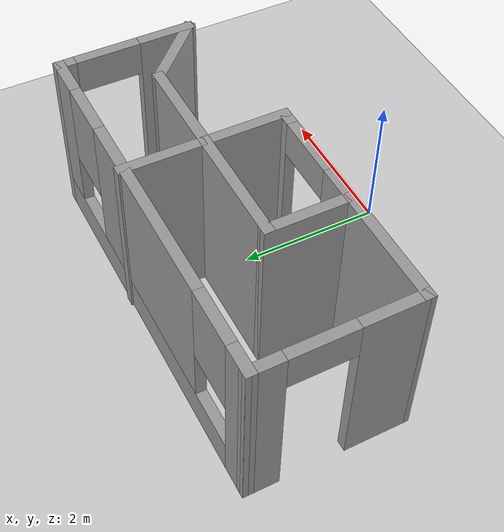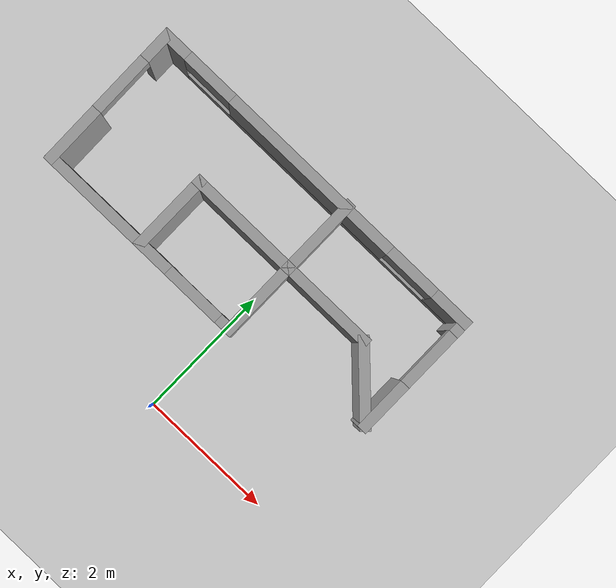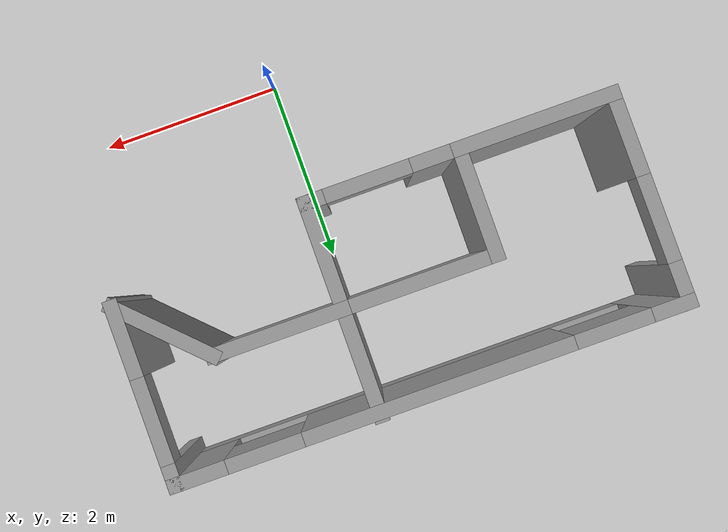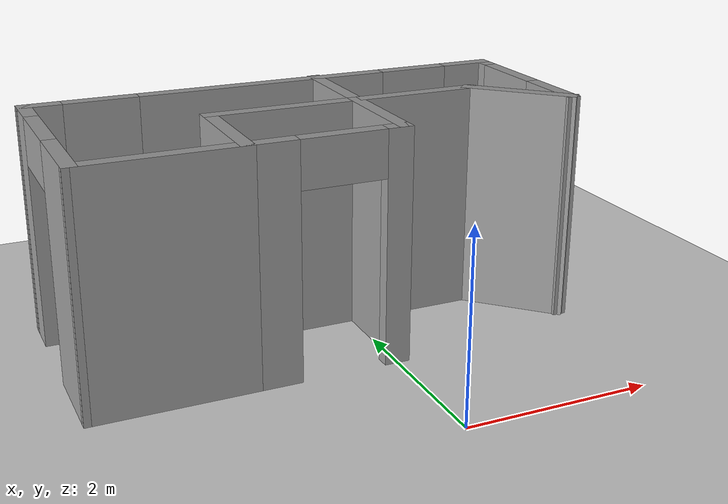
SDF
<sdf version="1.6">
 <world name="default">
  <model name="ground_plane">
   <static>1</static>
   <link name="link">
    <collision name="collision">
     <geometry><plane><normal>0 0 1</normal><size>100 100</size></plane></geometry>
     <surface><friction><ode><mu>100</mu><mu2>50</mu2></ode></friction></surface>
    </collision>
    <visual name="visual">
     <cast_shadows>0</cast_shadows>
     <geometry><plane><normal>0 0 1</normal><size>100 100</size></plane></geometry>
     <material>
      <script><uri>file://media/materials/scripts/gazebo.material</uri><name>Gazebo/Grey</name></script>
     </material>
    </visual>
   </link>
  </model>
  <light name="sun" type="directional">
   <pose>0 0 10 0 -0 0</pose>
   <diffuse>0.8 0.8 0.8 1</diffuse>
   <specular>0.1 0.1 0.1 1</specular>
   <attenuation>
    <range>1000</range>
    <constant>0.9</constant>
    <linear>0.01</linear>
    <quadratic>0.001</quadratic>
   </attenuation>
   <direction>-0.5 0.5 -1</direction>
  </light>
  <gravity>0 0 -9.8</gravity>
  <magnetic_field>6e-06 2.3e-05 -4.2e-05</magnetic_field>
  <atmosphere type="adiabatic"/>
  <physics name="default_physics" default="0" type="ode">
   <max_step_size>0.001</max_step_size>
   <real_time_factor>1</real_time_factor>
   <real_time_update_rate>1000</real_time_update_rate>
  </physics>
  <scene><ambient>0.4 0.4 0.4 1</ambient><background>0.7 0.7 0.7 1</background><shadows>1</shadows></scene>
  <spherical_coordinates>
   <surface_model>EARTH_WGS84</surface_model>
   <latitude_deg>0</latitude_deg>
   <longitude_deg>0</longitude_deg>
   <elevation>0</elevation>
   <heading_deg>0</heading_deg>
  </spherical_coordinates>
  <model name="test_room">
   <pose>-0.472272 2.58647 0 0 -0 0</pose>
   <link name="Wall_0">
    <pose>-0.015152 1.07256 0 0 -0 0</pose>
    <visual name="Wall_0_Visual_0">
     <pose>-2.5225 0 1.25 0 -0 0</pose>
     <geometry><box><size>0.455 0.15 2.5</size></box></geometry>
     <material>
      <script><uri>file://media/materials/scripts/gazebo.material</uri><name>Gazebo/Grey</name></script>
      <ambient>1 1 1 1</ambient>
     </material>
    </visual>
    <collision name="Wall_0_Collision_0">
     <geometry><box><size>0.455 0.15 2.5</size></box></geometry>
     <pose>-2.5225 0 1.25 0 -0 0</pose>
    </collision>
    <visual name="Wall_0_Visual_1">
     <pose>0.2275 0 0.25 0 -0 0</pose>
     <geometry><box><size>5.045 0.15 0.5</size></box></geometry>
     <material>
      <script><uri>file://media/materials/scripts/gazebo.material</uri><name>Gazebo/Grey</name></script>
      <ambient>1 1 1 1</ambient>
     </material>
    </visual>
    <collision name="Wall_0_Collision_1">
     <geometry><box><size>5.045 0.15 0.5</size></box></geometry>
     <pose>0.2275 0 0.25 0 -0 0</pose>
    </collision>
    <visual name="Wall_0_Visual_2">
     <pose>-0.078 0 1.5 0 -0 0</pose>
     <geometry><box><size>2.834 0.15 2</size></box></geometry>
     <material>
      <script><uri>file://media/materials/scripts/gazebo.material</uri><name>Gazebo/Grey</name></script>
      <ambient>1 1 1 1</ambient>
     </material>
    </visual>
    <collision name="Wall_0_Collision_2">
     <geometry><box><size>2.834 0.15 2</size></box></geometry>
     <pose>-0.078 0 1.5 0 -0 0</pose>
    </collision>
    <visual name="Wall_0_Visual_3">
     <pose>2.4445 0 1.5 0 -0 0</pose>
     <geometry><box><size>0.611 0.15 2</size></box></geometry>
     <material>
      <script><uri>file://media/materials/scripts/gazebo.material</uri><name>Gazebo/Grey</name></script>
      <ambient>1 1 1 1</ambient>
     </material>
    </visual>
    <collision name="Wall_0_Collision_3">
     <geometry><box><size>0.611 0.15 2</size></box></geometry>
     <pose>2.4445 0 1.5 0 -0 0</pose>
    </collision>
    <visual name="Wall_0_Visual_4">
     <pose>-1.895 0 1.9 0 -0 0</pose>
     <geometry><box><size>0.8 0.15 1.2</size></box></geometry>
     <material>
      <script><uri>file://media/materials/scripts/gazebo.material</uri><name>Gazebo/Grey</name></script>
      <ambient>1 1 1 1</ambient>
     </material>
    </visual>
    <collision name="Wall_0_Collision_4">
     <geometry><box><size>0.8 0.15 1.2</size></box></geometry>
     <pose>-1.895 0 1.9 0 -0 0</pose>
    </collision>
    <visual name="Wall_0_Visual_5">
     <pose>1.739 0 1.9 0 -0 0</pose>
     <geometry><box><size>0.8 0.15 1.2</size></box></geometry>
     <material>
      <script><uri>file://media/materials/scripts/gazebo.material</uri><name>Gazebo/Grey</name></script>
      <ambient>1 1 1 1</ambient>
     </material>
    </visual>
    <collision name="Wall_0_Collision_5">
     <geometry><box><size>0.8 0.15 1.2</size></box></geometry>
     <pose>1.739 0 1.9 0 -0 0</pose>
    </collision>
   </link>
   <link name="Wall_1">
    <pose>2.65985 0.147564 0 0 0 -1.5708</pose>
    <visual name="Wall_1_Visual_0">
     <pose>-0.857 0 1.25 0 -0 0</pose>
     <geometry><box><size>0.286 0.15 2.5</size></box></geometry>
     <material>
      <script><uri>file://media/materials/scripts/gazebo.material</uri><name>Gazebo/Grey</name></script>
      <ambient>1 1 1 1</ambient>
     </material>
    </visual>
    <collision name="Wall_1_Collision_0">
     <geometry><box><size>0.286 0.15 2.5</size></box></geometry>
     <pose>-0.857 0 1.25 0 -0 0</pose>
    </collision>
    <visual name="Wall_1_Visual_1">
     <pose>0.593 0 1.25 0 -0 0</pose>
     <geometry><box><size>0.814 0.15 2.5</size></box></geometry>
     <material>
      <script><uri>file://media/materials/scripts/gazebo.material</uri><name>Gazebo/Grey</name></script>
      <ambient>1 1 1 1</ambient>
     </material>
    </visual>
    <collision name="Wall_1_Collision_1">
     <geometry><box><size>0.814 0.15 2.5</size></box></geometry>
     <pose>0.593 0 1.25 0 -0 0</pose>
    </collision>
    <visual name="Wall_1_Visual_2">
     <pose>-0.264 0 2.25 0 -0 0</pose>
     <geometry><box><size>0.9 0.15 0.5</size></box></geometry>
     <material>
      <script><uri>file://media/materials/scripts/gazebo.material</uri><name>Gazebo/Grey</name></script>
      <ambient>1 1 1 1</ambient>
     </material>
    </visual>
    <collision name="Wall_1_Collision_2">
     <geometry><box><size>0.9 0.15 0.5</size></box></geometry>
     <pose>-0.264 0 2.25 0 -0 0</pose>
    </collision>
   </link>
   <link name="Wall_10">
    <collision name="Wall_10_Collision">
     <geometry><box><size>1.75 0.15 2.5</size></box></geometry>
     <pose>0 0 1.25 0 -0 0</pose>
    </collision>
    <visual name="Wall_10_Visual">
     <pose>0 0 1.25 0 -0 0</pose>
     <geometry><box><size>1.75 0.15 2.5</size></box></geometry>
     <material>
      <script><uri>file://media/materials/scripts/gazebo.material</uri><name>Gazebo/Grey</name></script>
      <ambient>1 1 1 1</ambient>
     </material>
    </visual>
    <pose>-1.86797 -1.09962 0 0 -0 3.14159</pose>
   </link>
   <link name="Wall_11">
    <pose>-2.67906 -0.013528 0 0 -0 1.58101</pose>
    <visual name="Wall_11_Visual_0">
     <pose>-0.696819 0 1.25 0 -0 0</pose>
     <geometry><box><size>0.928657 0.15 2.5</size></box></geometry>
     <material>
      <script><uri>file://media/materials/scripts/gazebo.material</uri><name>Gazebo/Grey</name></script>
      <ambient>1 1 1 1</ambient>
     </material>
    </visual>
    <collision name="Wall_11_Collision_0">
     <geometry><box><size>0.928657 0.15 2.5</size></box></geometry>
     <pose>-0.696819 0 1.25 0 -0 0</pose>
    </collision>
    <visual name="Wall_11_Visual_1">
     <pose>0.914329 0 1.25 0 -0 0</pose>
     <geometry><box><size>0.493639 0.15 2.5</size></box></geometry>
     <material>
      <script><uri>file://media/materials/scripts/gazebo.material</uri><name>Gazebo/Grey</name></script>
      <ambient>1 1 1 1</ambient>
     </material>
    </visual>
    <collision name="Wall_11_Collision_1">
     <geometry><box><size>0.493639 0.15 2.5</size></box></geometry>
     <pose>0.914329 0 1.25 0 -0 0</pose>
    </collision>
    <visual name="Wall_11_Visual_2">
     <pose>0.217509 0 2.25 0 -0 0</pose>
     <geometry><box><size>0.9 0.15 0.5</size></box></geometry>
     <material>
      <script><uri>file://media/materials/scripts/gazebo.material</uri><name>Gazebo/Grey</name></script>
      <ambient>1 1 1 1</ambient>
     </material>
    </visual>
    <collision name="Wall_11_Collision_2">
     <geometry><box><size>0.9 0.15 0.5</size></box></geometry>
     <pose>0.217509 0 2.25 0 -0 0</pose>
    </collision>
   </link>
   <link name="Wall_2">
    <collision name="Wall_2_Collision">
     <geometry><box><size>1.25 0.15 2.5</size></box></geometry>
     <pose>0 0 1.25 0 -0 0</pose>
    </collision>
    <visual name="Wall_2_Visual">
     <pose>0 0 1.25 0 -0 0</pose>
     <geometry><box><size>1.25 0.15 2.5</size></box></geometry>
     <material>
      <script><uri>file://media/materials/scripts/gazebo.material</uri><name>Gazebo/Grey</name></script>
      <ambient>1 1 1 1</ambient>
     </material>
    </visual>
    <pose>2.27094 -0.388528 0 0 -0 2.35619</pose>
   </link>
   <link name="Wall_3">
    <collision name="Wall_3_Collision">
     <geometry><box><size>1.5 0.15 2.5</size></box></geometry>
     <pose>0 0 1.25 0 -0 0</pose>
    </collision>
    <visual name="Wall_3_Visual">
     <pose>0 0 1.25 0 -0 0</pose>
     <geometry><box><size>1.5 0.15 2.5</size></box></geometry>
     <material>
      <script><uri>file://media/materials/scripts/gazebo.material</uri><name>Gazebo/Grey</name></script>
      <ambient>1 1 1 1</ambient>
     </material>
    </visual>
    <pose>1.20703 0.000381 0 0 -0 3.14159</pose>
   </link>
   <link name="Wall_4">
    <collision name="Wall_4_Collision">
     <geometry><box><size>1.25 0.15 2.5</size></box></geometry>
     <pose>0 0 1.25 0 -0 0</pose>
    </collision>
    <visual name="Wall_4_Visual">
     <pose>0 0 1.25 0 -0 0</pose>
     <geometry><box><size>1.25 0.15 2.5</size></box></geometry>
     <material>
      <script><uri>file://media/materials/scripts/gazebo.material</uri><name>Gazebo/Grey</name></script>
      <ambient>1 1 1 1</ambient>
     </material>
    </visual>
    <pose>0.53203 -0.549619 0 0 0 -1.5708</pose>
   </link>
   <link name="Wall_5">
    <pose>-0.26797 -1.09962 0 0 -0 3.14159</pose>
    <visual name="Wall_5_Visual_0">
     <pose>-0.738409 0 1.25 0 -0 0</pose>
     <geometry><box><size>0.273183 0.15 2.5</size></box></geometry>
     <material>
      <script><uri>file://media/materials/scripts/gazebo.material</uri><name>Gazebo/Grey</name></script>
      <ambient>1 1 1 1</ambient>
     </material>
    </visual>
    <collision name="Wall_5_Collision_0">
     <geometry><box><size>0.273183 0.15 2.5</size></box></geometry>
     <pose>-0.738409 0 1.25 0 -0 0</pose>
    </collision>
    <visual name="Wall_5_Visual_1">
     <pose>0.586591 0 1.25 0 -0 0</pose>
     <geometry><box><size>0.576817 0.15 2.5</size></box></geometry>
     <material>
      <script><uri>file://media/materials/scripts/gazebo.material</uri><name>Gazebo/Grey</name></script>
      <ambient>1 1 1 1</ambient>
     </material>
    </visual>
    <collision name="Wall_5_Collision_1">
     <geometry><box><size>0.576817 0.15 2.5</size></box></geometry>
     <pose>0.586591 0 1.25 0 -0 0</pose>
    </collision>
    <visual name="Wall_5_Visual_2">
     <pose>-0.151817 0 2.25 0 -0 0</pose>
     <geometry><box><size>0.9 0.15 0.5</size></box></geometry>
     <material>
      <script><uri>file://media/materials/scripts/gazebo.material</uri><name>Gazebo/Grey</name></script>
      <ambient>1 1 1 1</ambient>
     </material>
    </visual>
    <collision name="Wall_5_Collision_2">
     <geometry><box><size>0.9 0.15 0.5</size></box></geometry>
     <pose>-0.151817 0 2.25 0 -0 0</pose>
    </collision>
   </link>
   <link name="Wall_6">
    <collision name="Wall_6_Collision">
     <geometry><box><size>1.25 0.15 2.5</size></box></geometry>
     <pose>0 0 1.25 0 -0 0</pose>
    </collision>
    <visual name="Wall_6_Visual">
     <pose>0 0 1.25 0 -0 0</pose>
     <geometry><box><size>1.25 0.15 2.5</size></box></geometry>
     <material>
      <script><uri>file://media/materials/scripts/gazebo.material</uri><name>Gazebo/Grey</name></script>
      <ambient>1 1 1 1</ambient>
     </material>
    </visual>
    <pose>-1.06797 -0.549619 0 0 -0 1.5708</pose>
   </link>
   <link name="Wall_7">
    <collision name="Wall_7_Collision">
     <geometry><box><size>1.75 0.15 2.5</size></box></geometry>
     <pose>0 0 1.25 0 -0 0</pose>
    </collision>
    <visual name="Wall_7_Visual">
     <pose>0 0 1.25 0 -0 0</pose>
     <geometry><box><size>1.75 0.15 2.5</size></box></geometry>
     <material>
      <script><uri>file://media/materials/scripts/gazebo.material</uri><name>Gazebo/Grey</name></script>
      <ambient>1 1 1 1</ambient>
     </material>
    </visual>
    <pose>-0.26797 0.000381 0 0 -0 0</pose>
   </link>
   <link name="Wall_8">
    <collision name="Wall_8_Collision">
     <geometry><box><size>1.25 0.15 2.5</size></box></geometry>
     <pose>0 0 1.25 0 -0 0</pose>
    </collision>
    <visual name="Wall_8_Visual">
     <pose>0 0 1.25 0 -0 0</pose>
     <geometry><box><size>1.25 0.15 2.5</size></box></geometry>
     <material>
      <script><uri>file://media/materials/scripts/gazebo.material</uri><name>Gazebo/Grey</name></script>
      <ambient>1 1 1 1</ambient>
     </material>
    </visual>
    <pose>0.53203 0.550381 0 0 -0 1.5708</pose>
   </link>
   <static>1</static>
  </model>
 </world>
</sdf>
